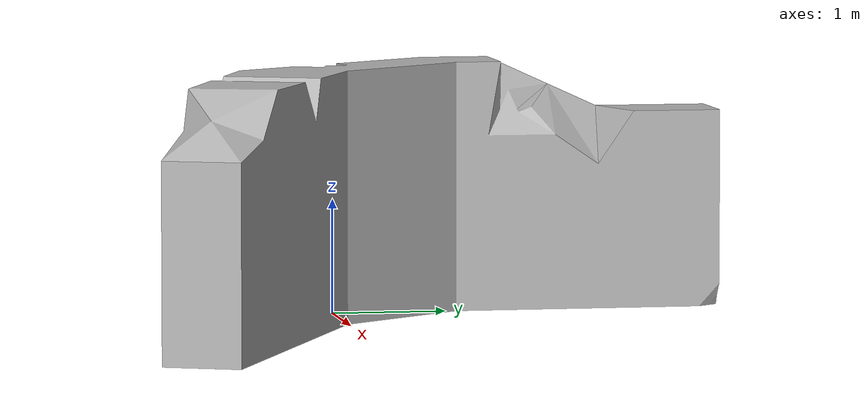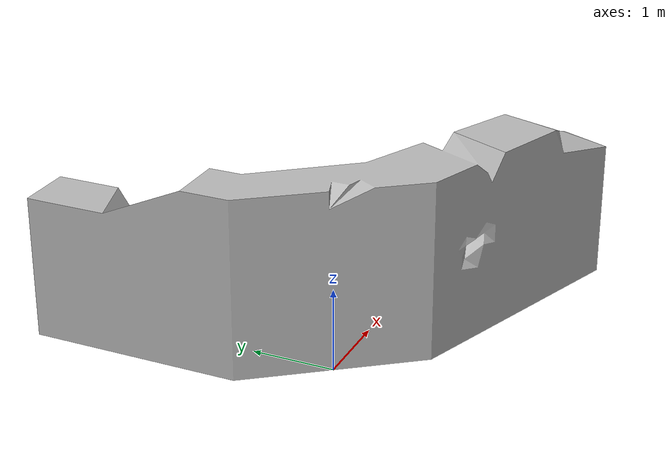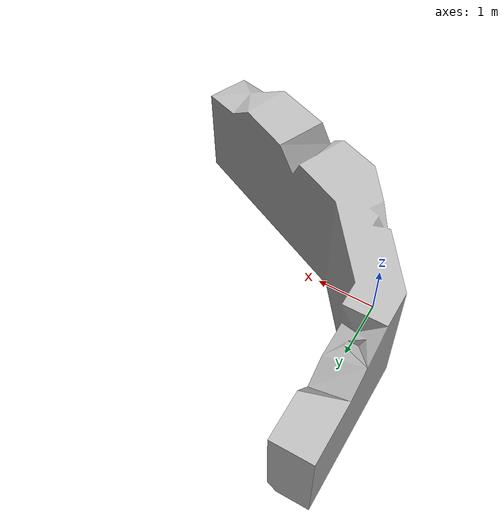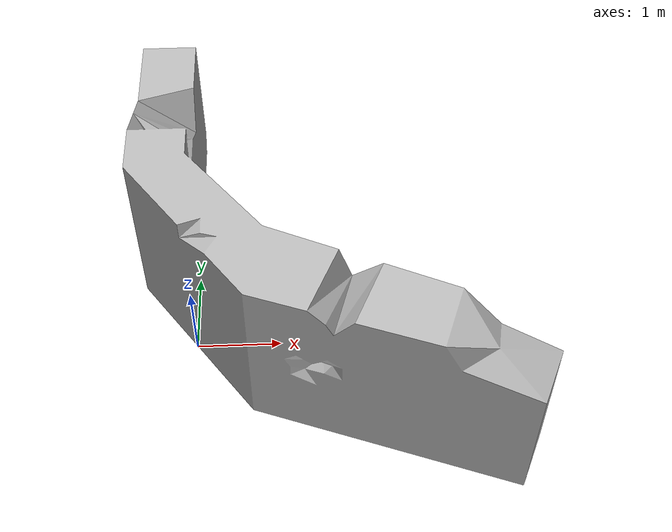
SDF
<?xml version="1.0"?>
<sdf version="1.4">
  <model name="Brick Wall">
    <link name="link">
      <inertial>
        <pose>0 0 0.4 0 0 0</pose>
        <mass>500</mass>
        <inertia>
          <ixx>51.2096</ixx>
          <iyy>51.2096</iyy>
          <izz>25</izz>
          <ixy>0</ixy>
          <ixz>0</ixz>
        </inertia>
      </inertial>
      <collision name="collision">
        <geometry>
          <mesh>
            <uri>model://brickwall/meshes/brickwall.dae</uri>
          </mesh>
        </geometry>
      </collision>
      <visual name="visual">
        <geometry>
          <mesh>
            <uri>model://brickwall/meshes/brickwall.dae</uri>
 	    <scale> 0.5 0.5 0.5 </scale>
          </mesh>
        </geometry>
        <material>
          <script>
            <uri>model://brickwall/materials/scripts</uri>
            <uri>model://brickwall/materials/textures</uri>
            <name>BrickWall/Diffuse</name>
          </script>
        </material>
      </visual>
    </link>
  </model>
</sdf>
